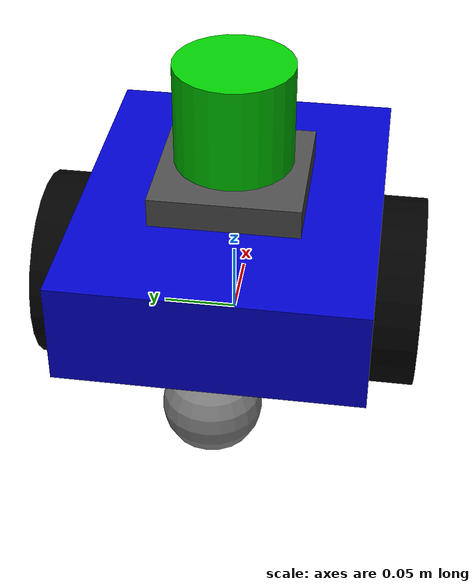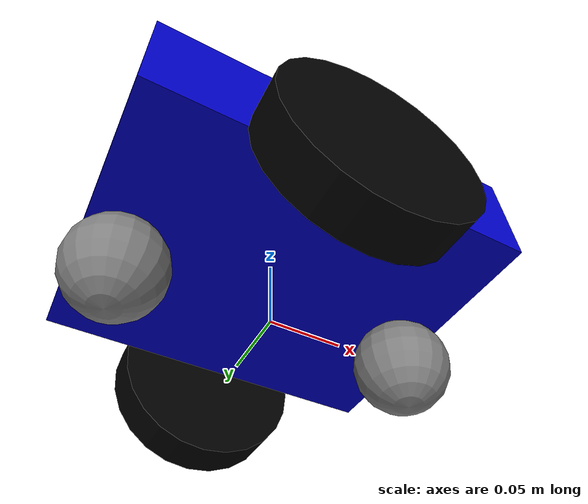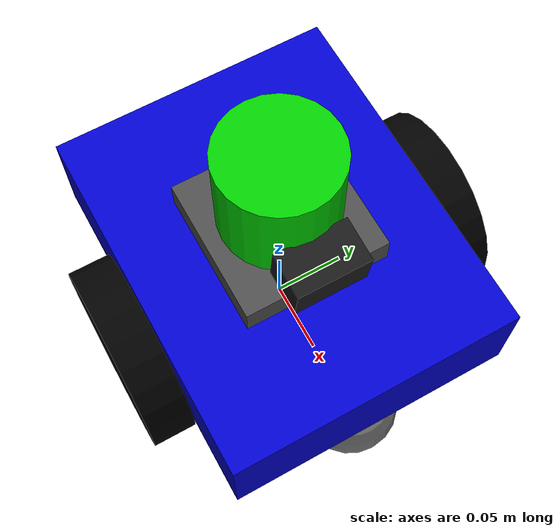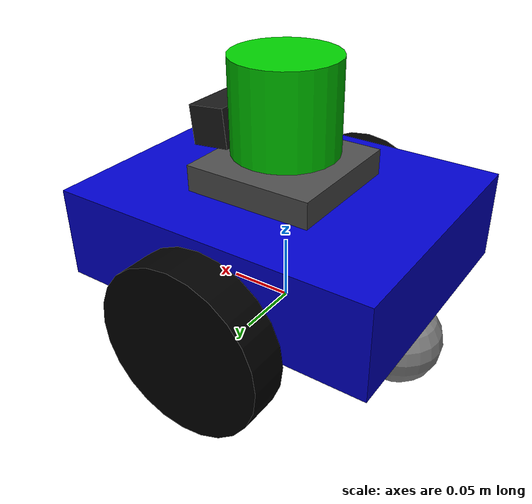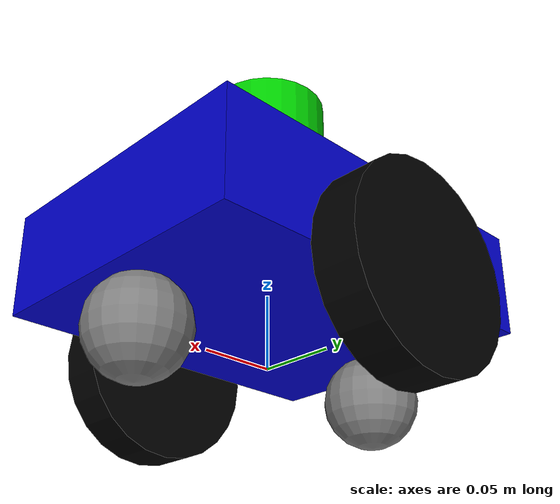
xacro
<?xml version="1.0"?>
<!--
  XACRO Robot Lengkap dengan:
  - Sensor kamera (camera plugin)
  - Sensor LIDAR (laser scan plugin)
  - Differential drive controller (ros_control)

  Digunakan pada Percobaan 5, 6, 7
-->
<robot name="robot_lengkap" xmlns:xacro="http://www.ros.org/wiki/xacro">

  <!-- XACRO Properties -->
  <xacro:property name="base_mass"     value="1.5"/>
  <xacro:property name="base_lebar"    value="0.20"/>
  <xacro:property name="base_panjang"  value="0.25"/>
  <xacro:property name="base_tinggi"   value="0.07"/>

  <xacro:property name="roda_radius"   value="0.065"/>
  <xacro:property name="roda_lebar"    value="0.03"/>
  <xacro:property name="roda_jarak"    value="0.115"/>

  <!-- XACRO Macro: Roda -->
  <xacro:macro name="roda" params="nama sisi offset_y">
    <link name="roda_${nama}">
      <inertial>
        <mass value="0.2"/>
        <origin xyz="0 0 0" rpy="0 0 0"/>
        <inertia ixx="0.000526" ixy="0" ixz="0"
                 iyy="0.000526" iyz="0" izz="0.001"/>
      </inertial>
      <collision>
        <origin xyz="0 0 0" rpy="1.5707963 0 0"/>
        <geometry>
          <cylinder radius="${roda_radius}" length="${roda_lebar}"/>
        </geometry>
      </collision>
      <visual>
        <origin xyz="0 0 0" rpy="1.5707963 0 0"/>
        <geometry>
          <cylinder radius="${roda_radius}" length="${roda_lebar}"/>
        </geometry>
        <material name="hitam">
          <color rgba="0 0 0 1"/>
        </material>
      </visual>
    </link>

    <joint name="joint_roda_${nama}" type="continuous">
      <parent link="base_link"/>
      <child link="roda_${nama}"/>
      <origin xyz="0.0 ${offset_y} ${-base_tinggi/2 - 0.0025}" rpy="0 0 0"/>
      <axis xyz="0 1 0"/>
      <dynamics damping="0.1"/>
    </joint>

    <gazebo reference="roda_${nama}">
      <material>Gazebo/Black</material>
      <mu1>1.0</mu1>
      <mu2>1.0</mu2>
      <kp>1e6</kp>
      <kd>100.0</kd>
    </gazebo>
  </xacro:macro>

  <!-- Base links -->
  <link name="base_footprint"/>
  <joint name="base_footprint_joint" type="fixed">
    <parent link="base_footprint"/>
    <child link="base_link"/>
    <origin xyz="0 0 ${roda_radius}" rpy="0 0 0"/>
  </joint>

  <link name="base_link">
    <inertial>
      <mass value="${base_mass}"/>
      <origin xyz="0 0 0" rpy="0 0 0"/>
      <inertia ixx="0.010416" ixy="0" ixz="0"
               iyy="0.010416" iyz="0" izz="0.018750"/>
    </inertial>
    <collision>
      <origin xyz="0 0 0" rpy="0 0 0"/>
      <geometry>
        <box size="${base_panjang} ${base_lebar} ${base_tinggi}"/>
      </geometry>
    </collision>
    <visual>
      <origin xyz="0 0 0" rpy="0 0 0"/>
      <geometry>
        <box size="${base_panjang} ${base_lebar} ${base_tinggi}"/>
      </geometry>
      <material name="biru">
        <color rgba="0.0 0.0 0.8 1.0"/>
      </material>
    </visual>
  </link>

  <!-- Gunakan macro roda -->
  <xacro:roda nama="kiri"    sisi="kiri"   offset_y="${roda_jarak}"/>
  <xacro:roda nama="kanan"   sisi="kanan"  offset_y="${-roda_jarak}"/>

  <!-- Caster wheel belakang -->
  <link name="caster_roda">
    <inertial>
      <mass value="0.05"/>
      <origin xyz="0 0 0" rpy="0 0 0"/>
      <inertia ixx="0.00004" ixy="0" ixz="0"
               iyy="0.00004" iyz="0" izz="0.00004"/>
    </inertial>
    <collision>
      <geometry><sphere radius="0.0325"/></geometry>
    </collision>
    <visual>
      <geometry><sphere radius="0.0325"/></geometry>
      <material name="abu_abu"><color rgba="0.5 0.5 0.5 1"/></material>
    </visual>
  </link>
  <joint name="joint_caster" type="fixed">
    <parent link="base_link"/>
    <child link="caster_roda"/>
    <origin xyz="-0.10 0 ${-base_tinggi/2 - 0.0325 + 0.0025}" rpy="0 0 0"/>
  </joint>
  <gazebo reference="caster_roda">
    <material>Gazebo/Grey</material>
    <mu1>0.0</mu1>
    <mu2>0.0</mu2>
  </gazebo>

  <!-- Caster wheel depan (mencegah robot jatuh ke depan saat belok) -->
  <link name="caster_depan">
    <inertial>
      <mass value="0.05"/>
      <origin xyz="0 0 0" rpy="0 0 0"/>
      <inertia ixx="0.00004" ixy="0" ixz="0"
               iyy="0.00004" iyz="0" izz="0.00004"/>
    </inertial>
    <collision>
      <geometry><sphere radius="0.0325"/></geometry>
    </collision>
    <visual>
      <geometry><sphere radius="0.0325"/></geometry>
      <material name="abu_abu"/>
    </visual>
  </link>
  <joint name="joint_caster_depan" type="fixed">
    <parent link="base_link"/>
    <child link="caster_depan"/>
    <origin xyz="0.10 0 ${-base_tinggi/2 - 0.0325 + 0.0025}" rpy="0 0 0"/>
  </joint>
  <gazebo reference="caster_depan">
    <material>Gazebo/Grey</material>
    <mu1>0.0</mu1>
    <mu2>0.0</mu2>
  </gazebo>

  <!-- Platform sensor (tepat di atas badan) -->
  <link name="sensor_platform">
    <inertial>
      <mass value="0.1"/>
      <origin xyz="0 0 0" rpy="0 0 0"/>
      <inertia ixx="0.001" ixy="0" ixz="0"
               iyy="0.001" iyz="0" izz="0.001"/>
    </inertial>
    <collision>
      <geometry><box size="0.1 0.1 0.02"/></geometry>
    </collision>
    <visual>
      <geometry><box size="0.1 0.1 0.02"/></geometry>
      <material name="abu_abu_tua"><color rgba="0.3 0.3 0.3 1"/></material>
    </visual>
  </link>
  <joint name="joint_sensor_platform" type="fixed">
    <parent link="base_link"/>
    <child link="sensor_platform"/>
    <origin xyz="0 0 ${base_tinggi/2 + 0.01}" rpy="0 0 0"/>
  </joint>

  <!-- SENSOR: Kamera -->
  <link name="camera_link">
    <inertial>
      <mass value="0.05"/>
      <origin xyz="0 0 0" rpy="0 0 0"/>
      <inertia ixx="0.0001" ixy="0" ixz="0"
               iyy="0.0001" iyz="0" izz="0.0001"/>
    </inertial>
    <collision>
      <geometry><box size="0.03 0.05 0.03"/></geometry>
    </collision>
    <visual>
      <geometry><box size="0.03 0.05 0.03"/></geometry>
      <material name="hitam_kamera"><color rgba="0.1 0.1 0.1 1"/></material>
    </visual>
  </link>
  <joint name="joint_camera" type="fixed">
    <parent link="sensor_platform"/>
    <child link="camera_link"/>
    <origin xyz="0.05 0 0.03" rpy="0 0.1 0"/>
  </joint>

  <!-- Gazebo camera plugin -->
  <gazebo reference="camera_link">
    <sensor name="kamera_depan" type="camera">
      <update_rate>30.0</update_rate>
      <camera name="head">
        <horizontal_fov>1.3962634</horizontal_fov>
        <image>
          <width>640</width>
          <height>480</height>
          <format>R8G8B8</format>
        </image>
        <clip>
          <near>0.02</near>
          <far>300</far>
        </clip>
        <noise>
          <type>gaussian</type>
          <mean>0.0</mean>
          <stddev>0.007</stddev>
        </noise>
      </camera>
      <plugin name="camera_controller" filename="libgazebo_ros_camera.so">
        <ros>
          <remapping>image_raw:=camera/image_raw</remapping>
          <remapping>camera_info:=camera/camera_info</remapping>
        </ros>
        <camera_name>camera</camera_name>
        <frame_name>camera_link</frame_name>
        <hack_baseline>0.07</hack_baseline>
      </plugin>
    </sensor>
  </gazebo>

  <!-- SENSOR: LIDAR / Laser Scan -->
  <link name="lidar_link">
    <inertial>
      <mass value="0.1"/>
      <origin xyz="0 0 0" rpy="0 0 0"/>
      <inertia ixx="0.0001" ixy="0" ixz="0"
               iyy="0.0001" iyz="0" izz="0.0001"/>
    </inertial>
    <collision>
      <geometry><cylinder radius="0.04" length="0.07"/></geometry>
    </collision>
    <visual>
      <geometry><cylinder radius="0.04" length="0.07"/></geometry>
      <material name="lidar_color"><color rgba="0.0 0.8 0.0 1"/></material>
    </visual>
  </link>
  <joint name="joint_lidar" type="fixed">
    <parent link="sensor_platform"/>
    <child link="lidar_link"/>
    <origin xyz="0 0 0.05" rpy="0 0 0"/>
  </joint>

  <!-- Gazebo LIDAR plugin -->
  <gazebo reference="lidar_link">
    <sensor name="laser_sensor" type="ray">
      <pose>0 0 0 0 0 0</pose>
      <visualize>true</visualize>
      <update_rate>10</update_rate>
      <ray>
        <scan>
          <horizontal>
            <samples>360</samples>
            <resolution>1</resolution>
            <min_angle>-3.14159265</min_angle>
            <max_angle>3.14159265</max_angle>
          </horizontal>
        </scan>
        <range>
          <min>0.10</min>
          <max>10.0</max>
          <resolution>0.01</resolution>
        </range>
        <noise>
          <type>gaussian</type>
          <mean>0.0</mean>
          <stddev>0.01</stddev>
        </noise>
      </ray>
      <plugin name="gazebo_ros_laser" filename="libgazebo_ros_ray_sensor.so">
        <ros>
          <remapping>~/out:=scan</remapping>
        </ros>
        <output_type>sensor_msgs/LaserScan</output_type>
        <frame_name>lidar_link</frame_name>
      </plugin>
    </sensor>
  </gazebo>

  <!-- Gazebo: Differential Drive Plugin -->
  <gazebo>
    <plugin name="diff_drive" filename="libgazebo_ros_diff_drive.so">
      <ros>
        <remapping>cmd_vel:=cmd_vel</remapping>
        <remapping>odom:=odom</remapping>
      </ros>
      <update_rate>50</update_rate>
      <left_joint>joint_roda_kiri</left_joint>
      <right_joint>joint_roda_kanan</right_joint>
      <wheel_separation>${2 * roda_jarak}</wheel_separation>
      <wheel_diameter>${2 * roda_radius}</wheel_diameter>
      <max_wheel_torque>20</max_wheel_torque>
      <publish_odom>true</publish_odom>
      <publish_odom_tf>true</publish_odom_tf>
      <publish_wheel_tf>false</publish_wheel_tf>
      <odometry_frame>odom</odometry_frame>
      <robot_base_frame>base_footprint</robot_base_frame>
    </plugin>
  </gazebo>

  <!-- Gazebo: Warna base_link -->
  <gazebo reference="base_link">
    <material>Gazebo/Blue</material>
  </gazebo>
  <gazebo reference="sensor_platform">
    <material>Gazebo/DarkGrey</material>
  </gazebo>
  <gazebo reference="camera_link">
    <material>Gazebo/Black</material>
  </gazebo>
  <gazebo reference="lidar_link">
    <material>Gazebo/Green</material>
  </gazebo>

</robot>
